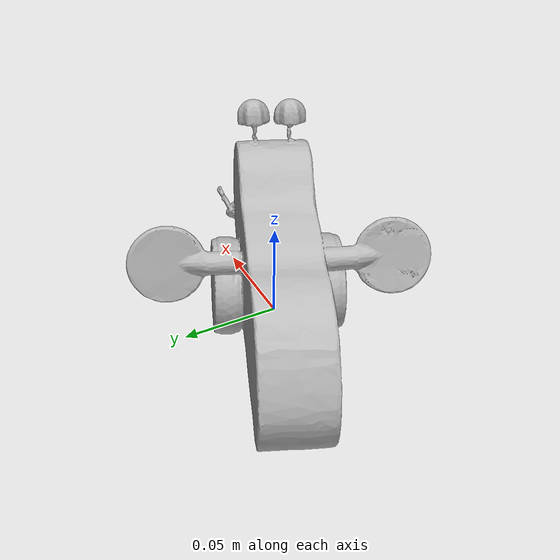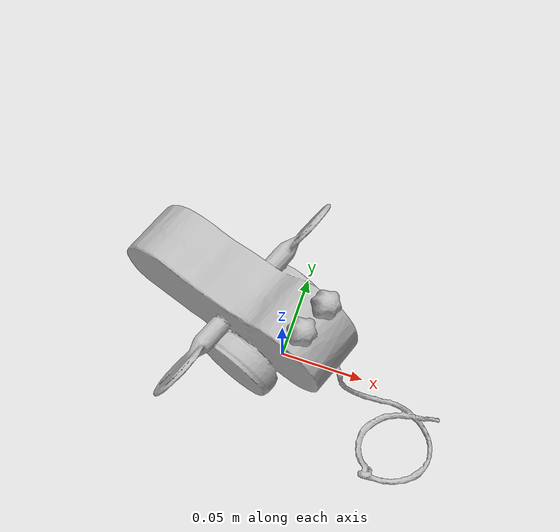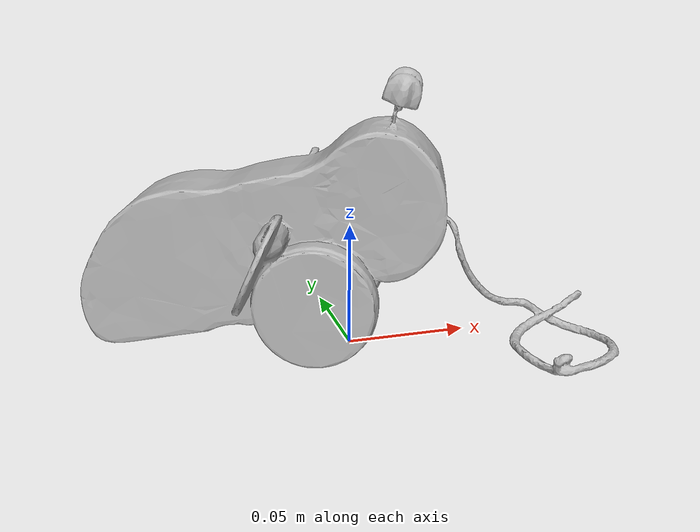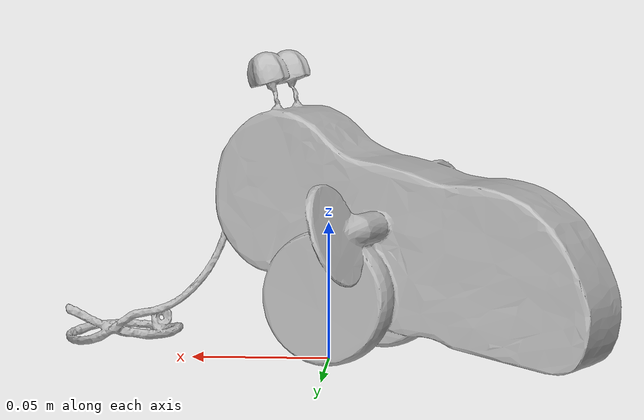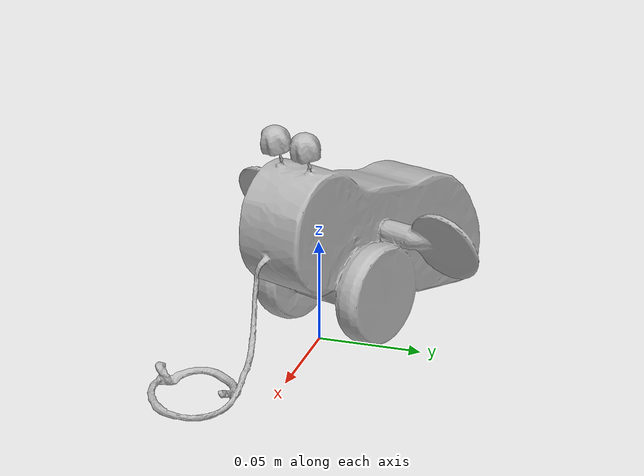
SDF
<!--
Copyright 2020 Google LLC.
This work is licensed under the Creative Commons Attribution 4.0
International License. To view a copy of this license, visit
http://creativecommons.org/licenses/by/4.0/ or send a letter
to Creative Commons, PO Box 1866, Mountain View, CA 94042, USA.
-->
<?xml version="1.0" ?>
<sdf version="1.6">
  <model name="Fisher_price_Classic_Toys_Buzzy_Bee">
    <link name="link_0">
      <visual name="visual">
        <geometry>
          <mesh>
            <uri>meshes/model.obj</uri>
          </mesh>
        </geometry>
      </visual>
      <collision name="collision_0">
        <geometry>
          <mesh>
            <uri>meshes/model.obj</uri>
          </mesh>
        </geometry>
      </collision>
    </link>
  </model>
</sdf>
